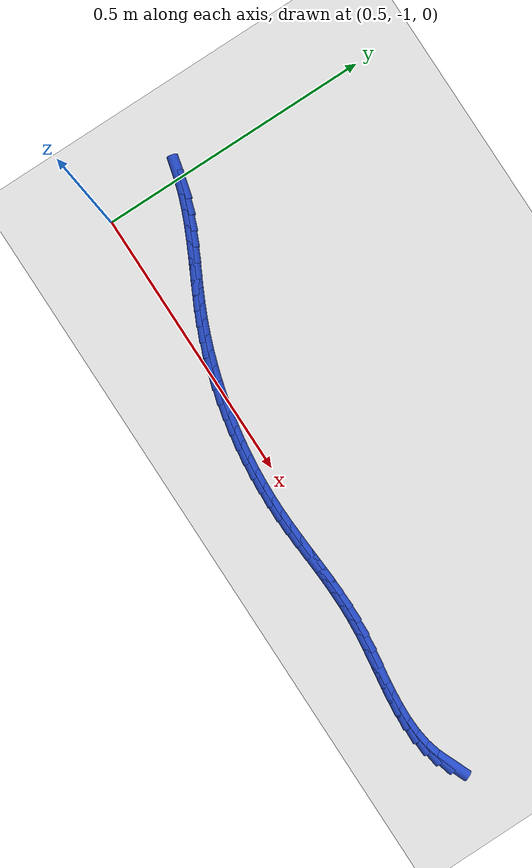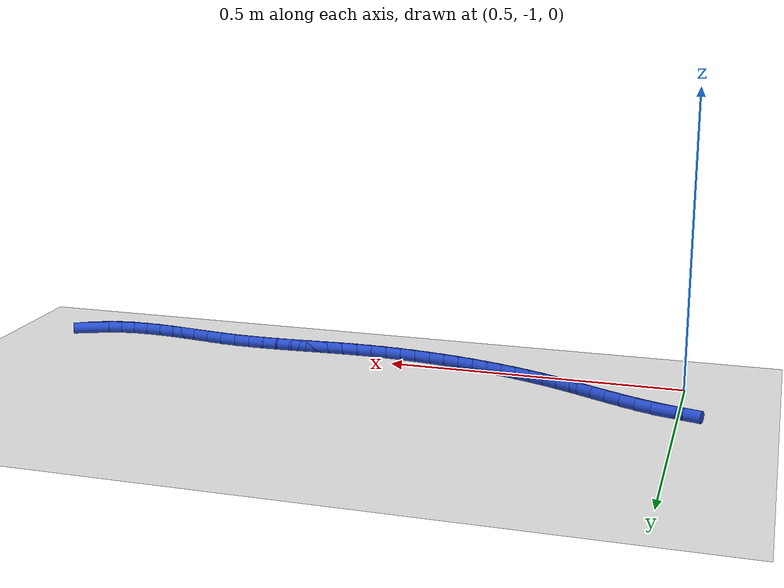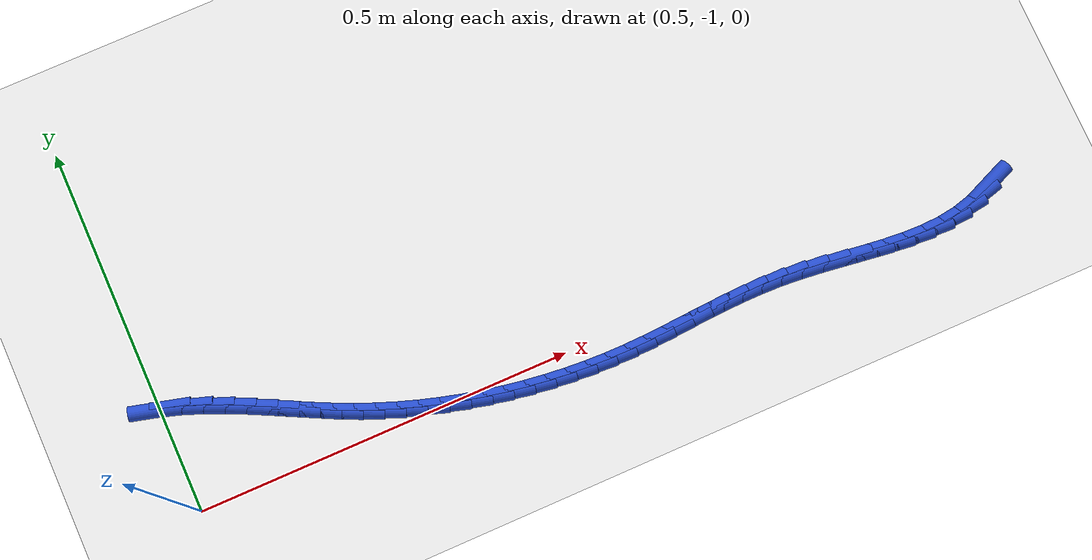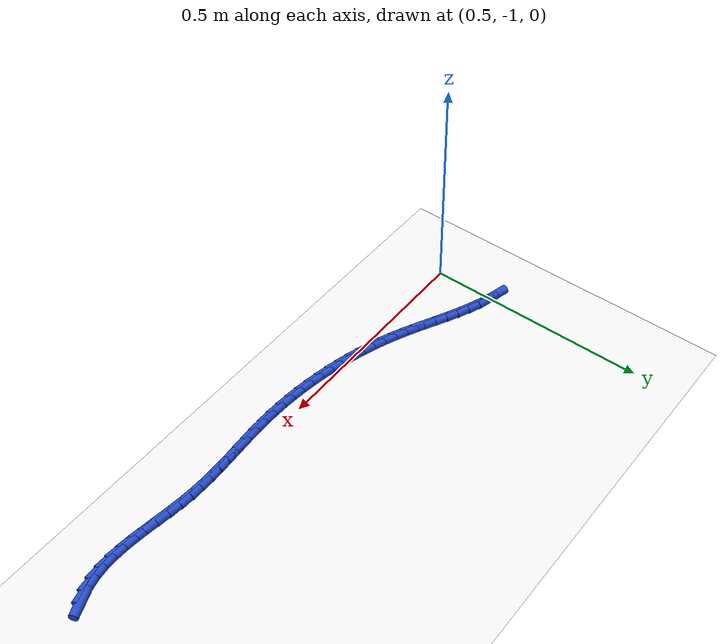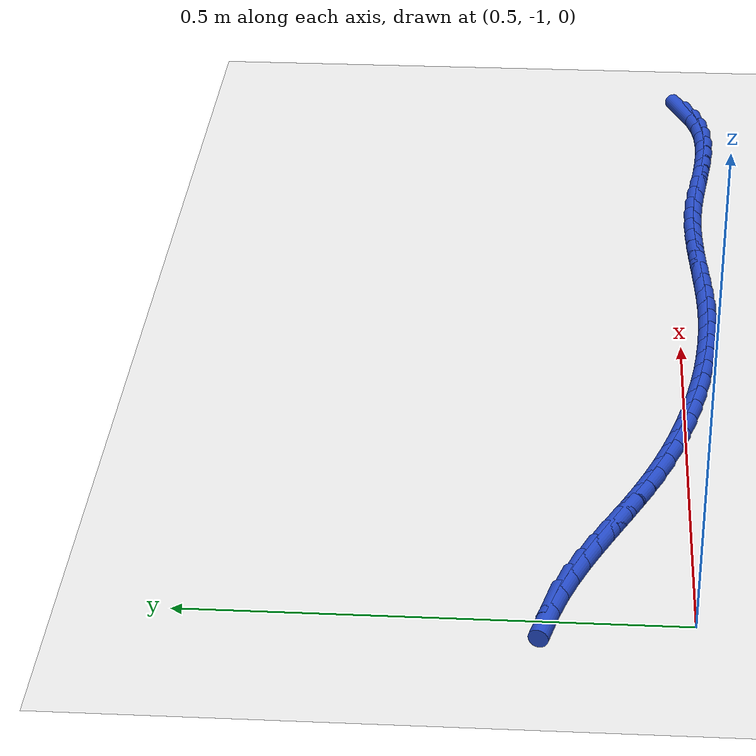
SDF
<sdf version="1.6">
 <world name="default">
  <model name="ground_plane">
   <static>1</static>
   <link name="link">
    <collision name="collision">
     <geometry><plane><normal>0 0 1</normal><size>100 100</size></plane></geometry>
     <surface><friction><ode><mu>100</mu><mu2>50</mu2></ode></friction></surface>
    </collision>
    <visual name="visual">
     <cast_shadows>0</cast_shadows>
     <geometry><plane><normal>0 0 1</normal><size>100 100</size></plane></geometry>
     <material>
      <script><uri>file://media/materials/scripts/gazebo.material</uri><name>Gazebo/WhiteGlow</name></script>
     </material>
    </visual>
   </link>
  </model>
  <model name="line">
   <link name="link_169">
    <pose>1.5797881461796242 -1.0221181789987865 0.01 0 1.57 0.3990807116229921</pose>
    <collision name="collision">
     <geometry><cylinder><radius>0.01</radius><length>0.08</length></cylinder></geometry>
    </collision>
    <visual name="visual">
     <material>
      <script><name>Gazebo/Blue</name><uri>file://media/materials/scripts/gazebo.material</uri></script>
     </material>
     <geometry><cylinder><radius>0.01</radius><length>0.08</length></cylinder></geometry>
    </visual>
   </link>
   <link name="link_170">
    <pose>1.556705659526496 -1.0318522950105238 0.01 0 1.57 0.2601708454804748</pose>
    <collision name="collision">
     <geometry><cylinder><radius>0.01</radius><length>0.08</length></cylinder></geometry>
    </collision>
    <visual name="visual">
     <material>
      <script><name>Gazebo/Blue</name><uri>file://media/materials/scripts/gazebo.material</uri></script>
     </material>
     <geometry><cylinder><radius>0.01</radius><length>0.08</length></cylinder></geometry>
    </visual>
   </link>
   <link name="link_171">
    <pose>1.5324653352912732 -1.0383051780597656 0.01 0 1.57 0.13635052918151894</pose>
    <collision name="collision">
     <geometry><cylinder><radius>0.01</radius><length>0.08</length></cylinder></geometry>
    </collision>
    <visual name="visual">
     <material>
      <script><name>Gazebo/Blue</name><uri>file://media/materials/scripts/gazebo.material</uri></script>
     </material>
     <geometry><cylinder><radius>0.01</radius><length>0.08</length></cylinder></geometry>
    </visual>
   </link>
   <link name="link_172">
    <pose>1.507150641285755 -1.0417784008102795 0.01 0 1.57 0.038204874769796816</pose>
    <collision name="collision">
     <geometry><cylinder><radius>0.01</radius><length>0.08</length></cylinder></geometry>
    </collision>
    <visual name="visual">
     <material>
      <script><name>Gazebo/Blue</name><uri>file://media/materials/scripts/gazebo.material</uri></script>
     </material>
     <geometry><cylinder><radius>0.01</radius><length>0.08</length></cylinder></geometry>
    </visual>
   </link>
   <link name="link_173">
    <pose>1.4809276154990523 -1.0427807359476238 0.01 0 1.57 -0.035575016144894694</pose>
    <collision name="collision">
     <geometry><cylinder><radius>0.01</radius><length>0.08</length></cylinder></geometry>
    </collision>
    <visual name="visual">
     <material>
      <script><name>Gazebo/Blue</name><uri>file://media/materials/scripts/gazebo.material</uri></script>
     </material>
     <geometry><cylinder><radius>0.01</radius><length>0.08</length></cylinder></geometry>
    </visual>
   </link>
   <link name="link_174">
    <pose>1.45396232956038 -1.041821040573183 0.01 0 1.57 -0.08738544229390274</pose>
    <collision name="collision">
     <geometry><cylinder><radius>0.01</radius><length>0.08</length></cylinder></geometry>
    </collision>
    <visual name="visual">
     <material>
      <script><name>Gazebo/Blue</name><uri>file://media/materials/scripts/gazebo.material</uri></script>
     </material>
     <geometry><cylinder><radius>0.01</radius><length>0.08</length></cylinder></geometry>
    </visual>
   </link>
   <link name="link_175">
    <pose>1.4264208550989517 -1.03940817178834 0.01 0 1.57 -0.11953452252528794</pose>
    <collision name="collision">
     <geometry><cylinder><radius>0.01</radius><length>0.08</length></cylinder></geometry>
    </collision>
    <visual name="visual">
     <material>
      <script><name>Gazebo/Blue</name><uri>file://media/materials/scripts/gazebo.material</uri></script>
     </material>
     <geometry><cylinder><radius>0.01</radius><length>0.08</length></cylinder></geometry>
    </visual>
   </link>
   <link name="link_176">
    <pose>1.3984692637439804 -1.0360509866944794 0.01 0 1.57 -0.1337091817643816</pose>
    <collision name="collision">
     <geometry><cylinder><radius>0.01</radius><length>0.08</length></cylinder></geometry>
    </collision>
    <visual name="visual">
     <material>
      <script><name>Gazebo/Blue</name><uri>file://media/materials/scripts/gazebo.material</uri></script>
     </material>
     <geometry><cylinder><radius>0.01</radius><length>0.08</length></cylinder></geometry>
    </visual>
   </link>
   <link name="link_177">
    <pose>1.3702736271246794 -1.032258342392985 0.01 0 1.57 -0.13079382974417078</pose>
    <collision name="collision">
     <geometry><cylinder><radius>0.01</radius><length>0.08</length></cylinder></geometry>
    </collision>
    <visual name="visual">
     <material>
      <script><name>Gazebo/Blue</name><uri>file://media/materials/scripts/gazebo.material</uri></script>
     </material>
     <geometry><cylinder><radius>0.01</radius><length>0.08</length></cylinder></geometry>
    </visual>
   </link>
   <link name="link_178">
    <pose>1.3420000168702624 -1.0285390959852398 0.01 0 1.57 -0.1108418365705334</pose>
    <collision name="collision">
     <geometry><cylinder><radius>0.01</radius><length>0.08</length></cylinder></geometry>
    </collision>
    <visual name="visual">
     <material>
      <script><name>Gazebo/Blue</name><uri>file://media/materials/scripts/gazebo.material</uri></script>
     </material>
     <geometry><cylinder><radius>0.01</radius><length>0.08</length></cylinder></geometry>
    </visual>
   </link>
   <link name="link_179">
    <pose>1.313814504609943 -1.0254021045726287 0.01 0 1.57 -0.07336310185743276</pose>
    <collision name="collision">
     <geometry><cylinder><radius>0.01</radius><length>0.08</length></cylinder></geometry>
    </collision>
    <visual name="visual">
     <material>
      <script><name>Gazebo/Blue</name><uri>file://media/materials/scripts/gazebo.material</uri></script>
     </material>
     <geometry><cylinder><radius>0.01</radius><length>0.08</length></cylinder></geometry>
    </visual>
   </link>
   <link name="link_180">
    <pose>1.2858811255072604 -1.0233491407980384 0.01 0 1.57 -0.028260237589851855</pose>
    <collision name="collision">
     <geometry><cylinder><radius>0.01</radius><length>0.08</length></cylinder></geometry>
    </collision>
    <visual name="visual">
     <material>
      <script><name>Gazebo/Blue</name><uri>file://media/materials/scripts/gazebo.material</uri></script>
     </material>
     <geometry><cylinder><radius>0.01</radius><length>0.08</length></cylinder></geometry>
    </visual>
   </link>
   <link name="link_181">
    <pose>1.2582738745785378 -1.022568745564644 0.01 0 1.57 0.009164201345224967</pose>
    <collision name="collision">
     <geometry><cylinder><radius>0.01</radius><length>0.08</length></cylinder></geometry>
    </collision>
    <visual name="visual">
     <material>
      <script><name>Gazebo/Blue</name><uri>file://media/materials/scripts/gazebo.material</uri></script>
     </material>
     <geometry><cylinder><radius>0.01</radius><length>0.08</length></cylinder></geometry>
    </visual>
   </link>
   <link name="link_182">
    <pose>1.2309430714025507 -1.0228192175596766 0.01 0 1.57 0.03717569862213729</pose>
    <collision name="collision">
     <geometry><cylinder><radius>0.01</radius><length>0.08</length></cylinder></geometry>
    </collision>
    <visual name="visual">
     <material>
      <script><name>Gazebo/Blue</name><uri>file://media/materials/scripts/gazebo.material</uri></script>
     </material>
     <geometry><cylinder><radius>0.01</radius><length>0.08</length></cylinder></geometry>
    </visual>
   </link>
   <link name="link_183">
    <pose>1.2038300588633142 -1.023827627337099 0.01 0 1.57 0.05534983371283111</pose>
    <collision name="collision">
     <geometry><cylinder><radius>0.01</radius><length>0.08</length></cylinder></geometry>
    </collision>
    <visual name="visual">
     <material>
      <script><name>Gazebo/Blue</name><uri>file://media/materials/scripts/gazebo.material</uri></script>
     </material>
     <geometry><cylinder><radius>0.01</radius><length>0.08</length></cylinder></geometry>
    </visual>
   </link>
   <link name="link_184">
    <pose>1.1768761798448446 -1.0253210454508757 0.01 0 1.57 0.06342620374235129</pose>
    <collision name="collision">
     <geometry><cylinder><radius>0.01</radius><length>0.08</length></cylinder></geometry>
    </collision>
    <visual name="visual">
     <material>
      <script><name>Gazebo/Blue</name><uri>file://media/materials/scripts/gazebo.material</uri></script>
     </material>
     <geometry><cylinder><radius>0.01</radius><length>0.08</length></cylinder></geometry>
    </visual>
   </link>
   <link name="link_185">
    <pose>1.1500227772311564 -1.0270265424549696 0.01 0 1.57 0.061264129752109944</pose>
    <collision name="collision">
     <geometry><cylinder><radius>0.01</radius><length>0.08</length></cylinder></geometry>
    </collision>
    <visual name="visual">
     <material>
      <script><name>Gazebo/Blue</name><uri>file://media/materials/scripts/gazebo.material</uri></script>
     </material>
     <geometry><cylinder><radius>0.01</radius><length>0.08</length></cylinder></geometry>
    </visual>
   </link>
   <link name="link_186">
    <pose>1.1232111939062652 -1.0286711889033444 0.01 0 1.57 0.04882228215758524</pose>
    <collision name="collision">
     <geometry><cylinder><radius>0.01</radius><length>0.08</length></cylinder></geometry>
    </collision>
    <visual name="visual">
     <material>
      <script><name>Gazebo/Blue</name><uri>file://media/materials/scripts/gazebo.material</uri></script>
     </material>
     <geometry><cylinder><radius>0.01</radius><length>0.08</length></cylinder></geometry>
    </visual>
   </link>
   <link name="link_187">
    <pose>1.0963827727541866 -1.0299820553499635 0.01 0 1.57 0.02616705588218522</pose>
    <collision name="collision">
     <geometry><cylinder><radius>0.01</radius><length>0.08</length></cylinder></geometry>
    </collision>
    <visual name="visual">
     <material>
      <script><name>Gazebo/Blue</name><uri>file://media/materials/scripts/gazebo.material</uri></script>
     </material>
     <geometry><cylinder><radius>0.01</radius><length>0.08</length></cylinder></geometry>
    </visual>
   </link>
   <link name="link_188">
    <pose>1.069478856658936 -1.0306862123487903 0.01 0 1.57 -0.005214185153807652</pose>
    <collision name="collision">
     <geometry><cylinder><radius>0.01</radius><length>0.08</length></cylinder></geometry>
    </collision>
    <visual name="visual">
     <material>
      <script><name>Gazebo/Blue</name><uri>file://media/materials/scripts/gazebo.material</uri></script>
     </material>
     <geometry><cylinder><radius>0.01</radius><length>0.08</length></cylinder></geometry>
    </visual>
   </link>
   <link name="link_189">
    <pose>1.0424538434964439 -1.0305452976493246 0.01 0 1.57 -0.038318649982812494</pose>
    <collision name="collision">
     <geometry><cylinder><radius>0.01</radius><length>0.08</length></cylinder></geometry>
    </collision>
    <visual name="visual">
     <material>
      <script><name>Gazebo/Blue</name><uri>file://media/materials/scripts/gazebo.material</uri></script>
     </material>
     <geometry><cylinder><radius>0.01</radius><length>0.08</length></cylinder></geometry>
    </visual>
   </link>
   <link name="link_190">
    <pose>1.0153318342556823 -1.0295055099072299 0.01 0 1.57 -0.07095148693399293</pose>
    <collision name="collision">
     <geometry><cylinder><radius>0.01</radius><length>0.08</length></cylinder></geometry>
    </collision>
    <visual name="visual">
     <material>
      <script><name>Gazebo/Blue</name><uri>file://media/materials/scripts/gazebo.material</uri></script>
     </material>
     <geometry><cylinder><radius>0.01</radius><length>0.08</length></cylinder></geometry>
    </visual>
   </link>
   <link name="link_191">
    <pose>0.9881600982729791 -1.0275743932618353 0.01 0 1.57 -0.10321772584668747</pose>
    <collision name="collision">
     <geometry><cylinder><radius>0.01</radius><length>0.08</length></cylinder></geometry>
    </collision>
    <visual name="visual">
     <material>
      <script><name>Gazebo/Blue</name><uri>file://media/materials/scripts/gazebo.material</uri></script>
     </material>
     <geometry><cylinder><radius>0.01</radius><length>0.08</length></cylinder></geometry>
    </visual>
   </link>
   <link name="link_192">
    <pose>0.9609859203866232 -1.0247595328987869 0.01 0 1.57 -0.1352224276997878</pose>
    <collision name="collision">
     <geometry><cylinder><radius>0.01</radius><length>0.08</length></cylinder></geometry>
    </collision>
    <visual name="visual">
     <material>
      <script><name>Gazebo/Blue</name><uri>file://media/materials/scripts/gazebo.material</uri></script>
     </material>
     <geometry><cylinder><radius>0.01</radius><length>0.08</length></cylinder></geometry>
    </visual>
   </link>
   <link name="link_193">
    <pose>0.933856585434905 -1.0210685140037317 0.01 0 1.57 -0.16706941389304164</pose>
    <collision name="collision">
     <geometry><cylinder><radius>0.01</radius><length>0.08</length></cylinder></geometry>
    </collision>
    <visual name="visual">
     <material>
      <script><name>Gazebo/Blue</name><uri>file://media/materials/scripts/gazebo.material</uri></script>
     </material>
     <geometry><cylinder><radius>0.01</radius><length>0.08</length></cylinder></geometry>
    </visual>
   </link>
   <link name="link_194">
    <pose>0.9068193782561134 -1.0165089217623156 0.01 0 1.57 -0.19886155907145955</pose>
    <collision name="collision">
     <geometry><cylinder><radius>0.01</radius><length>0.08</length></cylinder></geometry>
    </collision>
    <visual name="visual">
     <material>
      <script><name>Gazebo/Blue</name><uri>file://media/materials/scripts/gazebo.material</uri></script>
     </material>
     <geometry><cylinder><radius>0.01</radius><length>0.08</length></cylinder></geometry>
    </visual>
   </link>
   <link name="link_195">
    <pose>0.8799215836885388 -1.0110883413601852 0.01 0 1.57 -0.23070110739681</pose>
    <collision name="collision">
     <geometry><cylinder><radius>0.01</radius><length>0.08</length></cylinder></geometry>
    </collision>
    <visual name="visual">
     <material>
      <script><name>Gazebo/Blue</name><uri>file://media/materials/scripts/gazebo.material</uri></script>
     </material>
     <geometry><cylinder><radius>0.01</radius><length>0.08</length></cylinder></geometry>
    </visual>
   </link>
   <link name="link_196">
    <pose>0.8532104865704697 -1.0048143579829873 0.01 0 1.57 -0.262689990163674</pose>
    <collision name="collision">
     <geometry><cylinder><radius>0.01</radius><length>0.08</length></cylinder></geometry>
    </collision>
    <visual name="visual">
     <material>
      <script><name>Gazebo/Blue</name><uri>file://media/materials/scripts/gazebo.material</uri></script>
     </material>
     <geometry><cylinder><radius>0.01</radius><length>0.08</length></cylinder></geometry>
    </visual>
   </link>
   <link name="link_197">
    <pose>0.8267333717401968 -0.9976945568163685 0.01 0 1.57 -0.29493012353198095</pose>
    <collision name="collision">
     <geometry><cylinder><radius>0.01</radius><length>0.08</length></cylinder></geometry>
    </collision>
    <visual name="visual">
     <material>
      <script><name>Gazebo/Blue</name><uri>file://media/materials/scripts/gazebo.material</uri></script>
     </material>
     <geometry><cylinder><radius>0.01</radius><length>0.08</length></cylinder></geometry>
    </visual>
   </link>
   <link name="link_198">
    <pose>0.8005375240360088 -0.9897365230459749 0.01 0 1.57 -0.3275236647493269</pose>
    <collision name="collision">
     <geometry><cylinder><radius>0.01</radius><length>0.08</length></cylinder></geometry>
    </collision>
    <visual name="visual">
     <material>
      <script><name>Gazebo/Blue</name><uri>file://media/materials/scripts/gazebo.material</uri></script>
     </material>
     <geometry><cylinder><radius>0.01</radius><length>0.08</length></cylinder></geometry>
    </visual>
   </link>
   <link name="link_199">
    <pose>0.7746702282961959 -0.9809478418574533 0.01 0 1.57 -0.36057320361613276</pose>
    <collision name="collision">
     <geometry><cylinder><radius>0.01</radius><length>0.08</length></cylinder></geometry>
    </collision>
    <visual name="visual">
     <material>
      <script><name>Gazebo/Blue</name><uri>file://media/materials/scripts/gazebo.material</uri></script>
     </material>
     <geometry><cylinder><radius>0.01</radius><length>0.08</length></cylinder></geometry>
    </visual>
   </link>
   <link name="link_200">
    <pose>0.7491787693590476 -0.9713360984364504 0.01 0 1.57 -0.39418186316642256</pose>
    <collision name="collision">
     <geometry><cylinder><radius>0.01</radius><length>0.08</length></cylinder></geometry>
    </collision>
    <visual name="visual">
     <material>
      <script><name>Gazebo/Blue</name><uri>file://media/materials/scripts/gazebo.material</uri></script>
     </material>
     <geometry><cylinder><radius>0.01</radius><length>0.08</length></cylinder></geometry>
    </visual>
   </link>
   <link name="link_201">
    <pose>0.7241104320628533 -0.9609088779686121 0.01 0 1.57 -0.42766707249049973</pose>
    <collision name="collision">
     <geometry><cylinder><radius>0.01</radius><length>0.08</length></cylinder></geometry>
    </collision>
    <visual name="visual">
     <material>
      <script><name>Gazebo/Blue</name><uri>file://media/materials/scripts/gazebo.material</uri></script>
     </material>
     <geometry><cylinder><radius>0.01</radius><length>0.08</length></cylinder></geometry>
    </visual>
   </link>
   <link name="link_202">
    <pose>0.6994986595244714 -0.9496908217947977 0.01 0 1.57 -0.4536523470299363</pose>
    <collision name="collision">
     <geometry><cylinder><radius>0.01</radius><length>0.08</length></cylinder></geometry>
    </collision>
    <visual name="visual">
     <material>
      <script><name>Gazebo/Blue</name><uri>file://media/materials/scripts/gazebo.material</uri></script>
     </material>
     <geometry><cylinder><radius>0.01</radius><length>0.08</length></cylinder></geometry>
    </visual>
   </link>
   <link name="link_203">
    <pose>0.675247077888717 -0.9378665353495883 0.01 0 1.57 -0.46792808579662687</pose>
    <collision name="collision">
     <geometry><cylinder><radius>0.01</radius><length>0.08</length></cylinder></geometry>
    </collision>
    <visual name="visual">
     <material>
      <script><name>Gazebo/Blue</name><uri>file://media/materials/scripts/gazebo.material</uri></script>
     </material>
     <geometry><cylinder><radius>0.01</radius><length>0.08</length></cylinder></geometry>
    </visual>
   </link>
   <link name="link_204">
    <pose>0.6511882930496836 -0.9257081372013559 0.01 0 1.57 -0.47036351743219307</pose>
    <collision name="collision">
     <geometry><cylinder><radius>0.01</radius><length>0.08</length></cylinder></geometry>
    </collision>
    <visual name="visual">
     <material>
      <script><name>Gazebo/Blue</name><uri>file://media/materials/scripts/gazebo.material</uri></script>
     </material>
     <geometry><cylinder><radius>0.01</radius><length>0.08</length></cylinder></geometry>
    </visual>
   </link>
   <link name="link_205">
    <pose>0.6271541870990145 -0.9134886378080401 0.01 0 1.57 -0.4609577977161026</pose>
    <collision name="collision">
     <geometry><cylinder><radius>0.01</radius><length>0.08</length></cylinder></geometry>
    </collision>
    <visual name="visual">
     <material>
      <script><name>Gazebo/Blue</name><uri>file://media/materials/scripts/gazebo.material</uri></script>
     </material>
     <geometry><cylinder><radius>0.01</radius><length>0.08</length></cylinder></geometry>
    </visual>
   </link>
   <link name="link_206">
    <pose>0.6029766421283527 -0.9014810476275795 0.01 0 1.57 -0.4397886659264019</pose>
    <collision name="collision">
     <geometry><cylinder><radius>0.01</radius><length>0.08</length></cylinder></geometry>
    </collision>
    <visual name="visual">
     <material>
      <script><name>Gazebo/Blue</name><uri>file://media/materials/scripts/gazebo.material</uri></script>
     </material>
     <geometry><cylinder><radius>0.01</radius><length>0.08</length></cylinder></geometry>
    </visual>
   </link>
   <link name="link_207">
    <pose>0.5784875402293411 -0.8899583771179141 0.01 0 1.57 -0.40704970175155736</pose>
    <collision name="collision">
     <geometry><cylinder><radius>0.01</radius><length>0.08</length></cylinder></geometry>
    </collision>
    <visual name="visual">
     <material>
      <script><name>Gazebo/Blue</name><uri>file://media/materials/scripts/gazebo.material</uri></script>
     </material>
     <geometry><cylinder><radius>0.01</radius><length>0.08</length></cylinder></geometry>
    </visual>
   </link>
   <link name="link_208">
    <pose>0.553518763493623 -0.8791936367369828 0.01 0 1.57 -0.36313006976414364</pose>
    <collision name="collision">
     <geometry><cylinder><radius>0.01</radius><length>0.08</length></cylinder></geometry>
    </collision>
    <visual name="visual">
     <material>
      <script><name>Gazebo/Blue</name><uri>file://media/materials/scripts/gazebo.material</uri></script>
     </material>
     <geometry><cylinder><radius>0.01</radius><length>0.08</length></cylinder></geometry>
    </visual>
   </link>
   <link name="link_209">
    <pose>0.5279021940128416 -0.8694598369427253 0.01 0 1.57 -0.3088507866124618</pose>
    <collision name="collision">
     <geometry><cylinder><radius>0.01</radius><length>0.08</length></cylinder></geometry>
    </collision>
    <visual name="visual">
     <material>
      <script><name>Gazebo/Blue</name><uri>file://media/materials/scripts/gazebo.material</uri></script>
     </material>
     <geometry><cylinder><radius>0.01</radius><length>0.08</length></cylinder></geometry>
    </visual>
   </link>
   <link name="link_210">
    <pose>0.5014718550577821 -0.8610269508742833 0.01 0 1.57 -0.2556812428433874</pose>
    <collision name="collision">
     <geometry><cylinder><radius>0.01</radius><length>0.08</length></cylinder></geometry>
    </collision>
    <visual name="visual">
     <material>
      <script><name>Gazebo/Blue</name><uri>file://media/materials/scripts/gazebo.material</uri></script>
     </material>
     <geometry><cylinder><radius>0.01</radius><length>0.08</length></cylinder></geometry>
    </visual>
   </link>
  </model>
 </world>
</sdf>
